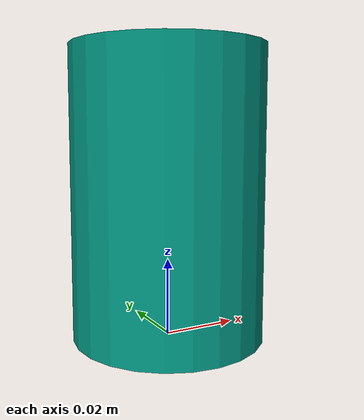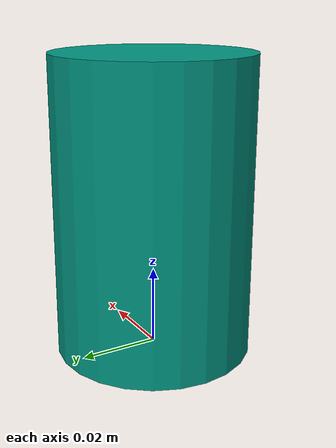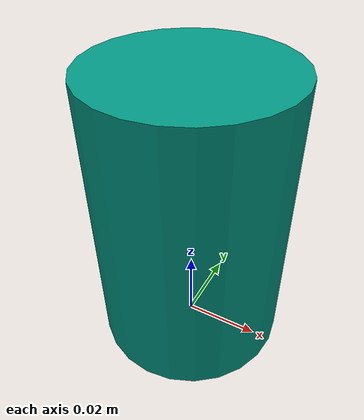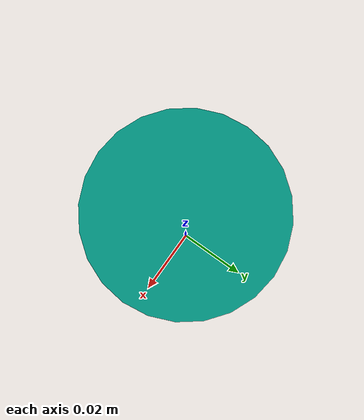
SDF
<?xml version='1.0'?>
<sdf version="1.4">
  <model name="cylinder">
    <pose>0 0 0.0375 0 0 0</pose>
    <link name="link">
      <inertial>
        <mass>0.1</mass>
        <inertia> <!-- inertias are tricky to compute -->
          <!-- http://gazebosim.org/tutorials?tut=inertia&cat=build_robot -->
          <ixx>0.00020833333</ixx> <!-- for a cylinder: ixx = 0.25 * mass * (3 * r^2 + h^2) -->
          <ixy>0.0</ixy>         <!-- for a cylinder: ixy = 0 -->
          <ixz>0.0</ixz>         <!-- for a cylinder: ixz = 0 -->
          <iyy>0.00020833333</iyy> <!-- for a cylinder: iyy = 0.25 * mass * (3 * r^2 + h^2) -->
          <iyz>0.0</iyz>         <!-- for a cylinder: iyz = 0 -->
          <izz>0.00004166667</izz> <!-- for a cylinder: izz = 0.5 * mass * r^2 -->
        </inertia>
      </inertial>
      <collision name="collision">
        <geometry>
          <cylinder>
            <radius>0.025</radius>
            <length>0.075</length>
          </cylinder>
        </geometry>
        <surface>
          <!--NOTE: Uses dynamic friction of brick on a wood surface
          see https://www.engineeringtoolbox.com/friction-coefficients-d_778.html
          -->
          <friction>
            <ode>
              <mu>0.6</mu>
              <mu2>0.6</mu2>
              <fdir1>0 0 0</fdir1>
              <slip1>0</slip1>
              <slip2>0</slip2>
            </ode>
            <torsional>
              <coefficient>1</coefficient>
              <patch_radius>0</patch_radius>
              <surface_radius>0</surface_radius>
              <use_patch_radius>1</use_patch_radius>
              <ode>
                <slip>0</slip>
              </ode>
            </torsional>
          </friction>
          <bounce>
            <restitution_coefficient>0</restitution_coefficient>
            <threshold>1e+06</threshold>
          </bounce>
          <contact>
            <collide_without_contact>0</collide_without_contact>
            <collide_without_contact_bitmask>1</collide_without_contact_bitmask>
            <collide_bitmask>1</collide_bitmask>
            <ode>
              <soft_cfm>0</soft_cfm>
              <soft_erp>0.2</soft_erp>
              <kp>1e+13</kp>
              <kd>1</kd>
              <max_vel>0</max_vel>
              <min_depth>0.003</min_depth>
            </ode>
            <bullet>
              <split_impulse>1</split_impulse>
              <split_impulse_penetration_threshold>-0.01</split_impulse_penetration_threshold>
              <soft_cfm>0</soft_cfm>
              <soft_erp>0.2</soft_erp>
              <kp>1e+13</kp>
              <kd>1</kd>
            </bullet>
          </contact>
        </surface>
      </collision>
      <visual name="visual">
        <geometry>
          <cylinder>
            <radius>0.025</radius>
            <length>0.075</length>
          </cylinder>
        </geometry>
        <material> <!-- Test cylinder material: Dark Blue, based on: http://gazebosim.org/tutorials?tut=color_model -->
          <!-- KIT Green RGB: 0 150 130 ->  0 0.588 0.51 1-->
          <ambient>0 0.588 0.51 1</ambient>
          <diffuse>0 0.588 0.51 1</diffuse>
          <specular>0 0 0 0</specular>
          <emissive>0 0 0 1</emissive>
        </material> <!-- End test cylinder material -->
      </visual>
    </link>
  </model>
</sdf>
